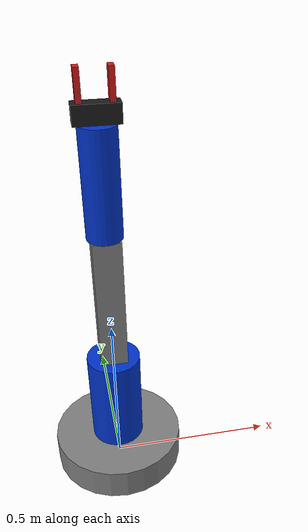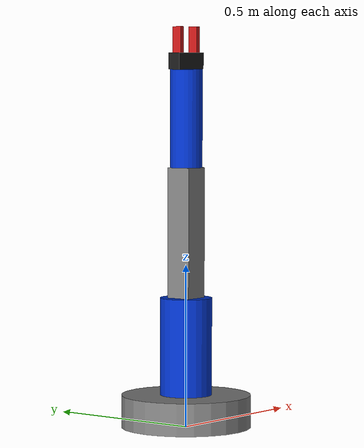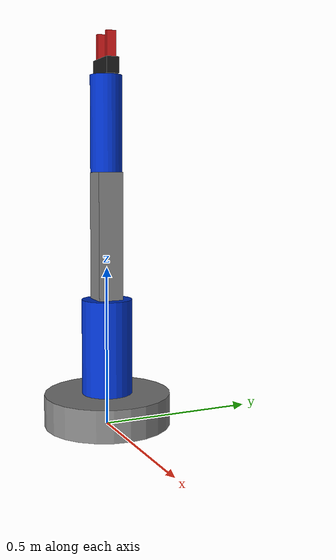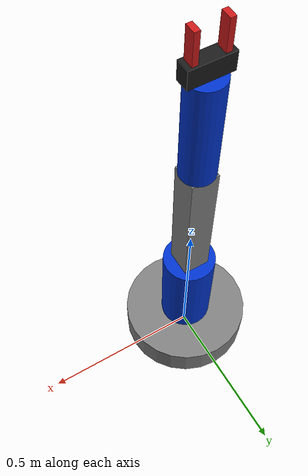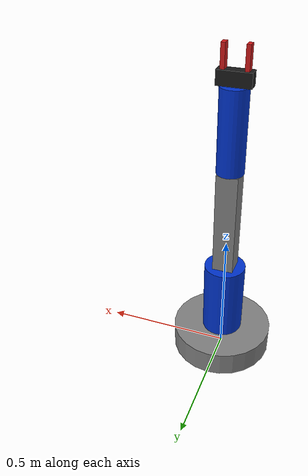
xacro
<?xml version="1.0"?>
<robot xmlns:xacro="http://www.ros.org/wiki/xacro" name="my_robot">

  <!-- ==================== COLORES Y MATERIALES ==================== -->
  <material name="blue">
    <color rgba="0.0 0.2 0.8 1.0"/>
  </material>
  <material name="grey">
    <color rgba="0.5 0.5 0.5 1.0"/>
  </material>
  <material name="black">
    <color rgba="0.1 0.1 0.1 1.0"/>
  </material>
  <material name="red">
    <color rgba="0.8 0.1 0.1 1.0"/>
  </material>

  <!-- ==================== MACROS INERCIALES ==================== -->
  <xacro:macro name="inertial_box" params="mass x y z *origin">
    <inertial>
      <xacro:insert_block name="origin"/>
      <mass value="${mass}"/>
      <inertia ixx="${(1/12) * mass * (y*y + z*z)}" ixy="0.0" ixz="0.0"
               iyy="${(1/12) * mass * (x*x + z*z)}" iyz="0.0"
               izz="${(1/12) * mass * (x*x + y*y)}"/>
    </inertial>
  </xacro:macro>

  <xacro:macro name="inertial_cylinder" params="mass length radius *origin">
    <inertial>
      <xacro:insert_block name="origin"/>
      <mass value="${mass}"/>
      <inertia ixx="${(1/12) * mass * (3*radius*radius + length*length)}" ixy="0.0" ixz="0.0"
               iyy="${(1/12) * mass * (3*radius*radius + length*length)}" iyz="0.0"
               izz="${(1/2) * mass * (radius*radius)}"/>
    </inertial>
  </xacro:macro>

  <!-- ==================== BASE LINK ==================== -->
  <link name="base_link">
    <visual>
      <origin xyz="0 0 0.05" rpy="0 0 0"/>
      <geometry>
        <cylinder radius="0.2" length="0.1"/>
      </geometry>
      <material name="grey"/>
    </visual>
    <collision>
      <origin xyz="0 0 0.05" rpy="0 0 0"/>
      <geometry>
        <cylinder radius="0.2" length="0.1"/>
      </geometry>
    </collision>
    <xacro:inertial_cylinder mass="5.0" length="0.1" radius="0.2">
      <origin xyz="0 0 0.05" rpy="0 0 0"/>
    </xacro:inertial_cylinder>
  </link>

  <!-- ==================== JOINT 1 (Revolución) ==================== -->
  <joint name="joint_1" type="revolute">
    <parent link="base_link"/>
    <child link="shoulder_link"/>
    <origin xyz="0 0 0.1" rpy="0 0 0"/>
    <axis xyz="0 0 1"/>
    <limit lower="-3.1416" upper="3.1416" effort="10.0" velocity="1.0"/>
  </joint>

  <link name="shoulder_link">
    <visual>
      <origin xyz="0 0 0.15" rpy="0 0 0"/>
      <geometry>
        <cylinder radius="0.08" length="0.3"/>
      </geometry>
      <material name="blue"/>
    </visual>
    <collision>
      <origin xyz="0 0 0.15" rpy="0 0 0"/>
      <geometry>
        <cylinder radius="0.08" length="0.3"/>
      </geometry>
    </collision>
    <xacro:inertial_cylinder mass="2.0" length="0.3" radius="0.08">
      <origin xyz="0 0 0.15" rpy="0 0 0"/>
    </xacro:inertial_cylinder>
  </link>

  <!-- ==================== JOINT 2 (Revolución) ==================== -->
  <joint name="joint_2" type="revolute">
    <parent link="shoulder_link"/>
    <child link="arm_link"/>
    <origin xyz="0 0 0.3" rpy="0 0 0"/>
    <axis xyz="0 1 0"/>
    <limit lower="-1.57" upper="1.57" effort="10.0" velocity="1.0"/>
  </joint>

  <link name="arm_link">
    <visual>
      <origin xyz="0 0 0.2" rpy="0 0 0"/>
      <geometry>
        <box size="0.08 0.08 0.4"/>
      </geometry>
      <material name="grey"/>
    </visual>
    <collision>
      <origin xyz="0 0 0.2" rpy="0 0 0"/>
      <geometry>
        <box size="0.08 0.08 0.4"/>
      </geometry>
    </collision>
    <xacro:inertial_box mass="1.5" x="0.08" y="0.08" z="0.4">
      <origin xyz="0 0 0.2" rpy="0 0 0"/>
    </xacro:inertial_box>
  </link>

  <!-- ==================== JOINT 3 (Prismático) ==================== -->
  <joint name="joint_3" type="prismatic">
    <parent link="arm_link"/>
    <child link="forearm_link"/>
    <origin xyz="0 0 0.4" rpy="0 0 0"/>
    <axis xyz="0 0 1"/>
    <limit lower="0.0" upper="0.2" effort="10.0" velocity="0.5"/>
  </joint>

  <link name="forearm_link">
    <visual>
      <origin xyz="0 0 0.15" rpy="0 0 0"/>
      <geometry>
        <cylinder radius="0.05" length="0.3"/>
      </geometry>
      <material name="blue"/>
    </visual>
    <collision>
      <origin xyz="0 0 0.15" rpy="0 0 0"/>
      <geometry>
        <cylinder radius="0.05" length="0.3"/>
      </geometry>
    </collision>
    <xacro:inertial_cylinder mass="1.0" length="0.3" radius="0.05">
      <origin xyz="0 0 0.15" rpy="0 0 0"/>
    </xacro:inertial_cylinder>
  </link>

  <!-- ==================== JOINT 4 (Continuo) ==================== -->
  <joint name="joint_4" type="continuous">
    <parent link="forearm_link"/>
    <child link="wrist_link"/>
    <origin xyz="0 0 0.3" rpy="0 0 0"/>
    <axis xyz="0 0 1"/>
  </joint>

  <link name="wrist_link">
    <visual>
      <origin xyz="0 0 0.025" rpy="0 0 0"/>
      <geometry>
        <box size="0.12 0.04 0.05"/>
      </geometry>
      <material name="black"/>
    </visual>
    <collision>
      <origin xyz="0 0 0.025" rpy="0 0 0"/>
      <geometry>
        <box size="0.12 0.04 0.05"/>
      </geometry>
    </collision>
    <xacro:inertial_box mass="0.5" x="0.12" y="0.04" z="0.05">
      <origin xyz="0 0 0.025" rpy="0 0 0"/>
    </xacro:inertial_box>
  </link>

  <!-- ==================== EFECTOR FINAL / GRIPPER ==================== -->
  <joint name="gripper_left_joint" type="prismatic">
    <parent link="wrist_link"/>
    <child link="gripper_left_link"/>
    <origin xyz="-0.04 0 0.05" rpy="0 0 0"/>
    <axis xyz="1 0 0"/>
    <limit lower="0.0" upper="0.03" effort="5.0" velocity="0.2"/>
  </joint>

  <link name="gripper_left_link">
    <visual>
      <origin xyz="0 0 0.04" rpy="0 0 0"/>
      <geometry>
        <box size="0.015 0.03 0.08"/>
      </geometry>
      <material name="red"/>
    </visual>
    <collision>
      <origin xyz="0 0 0.04" rpy="0 0 0"/>
      <geometry>
        <box size="0.015 0.03 0.08"/>
      </geometry>
    </collision>
    <xacro:inertial_box mass="0.1" x="0.015" y="0.03" z="0.08">
      <origin xyz="0 0 0.04" rpy="0 0 0"/>
    </xacro:inertial_box>
  </link>

  <joint name="gripper_right_joint" type="prismatic">
    <parent link="wrist_link"/>
    <child link="gripper_right_link"/>
    <origin xyz="0.04 0 0.05" rpy="0 0 0"/>
    <axis xyz="-1 0 0"/>
    <limit lower="0.0" upper="0.03" effort="5.0" velocity="0.2"/>
  </joint>

  <link name="gripper_right_link">
    <visual>
      <origin xyz="0 0 0.04" rpy="0 0 0"/>
      <geometry>
        <box size="0.015 0.03 0.08"/>
      </geometry>
      <material name="red"/>
    </visual>
    <collision>
      <origin xyz="0 0 0.04" rpy="0 0 0"/>
      <geometry>
        <box size="0.015 0.03 0.08"/>
      </geometry>
    </collision>
    <xacro:inertial_box mass="0.1" x="0.015" y="0.03" z="0.08">
      <origin xyz="0 0 0.04" rpy="0 0 0"/>
    </xacro:inertial_box>
  </link>
<!-- ==================== PLUGIN DE GAZEBO ROS2 CONTROL / JOINT STATE ==================== -->
  <gazebo>
    <plugin filename="gz-sim-joint-state-publisher-system" name="gz::sim::systems::JointStatePublisher">
    </plugin>
  </gazebo>

</robot>
